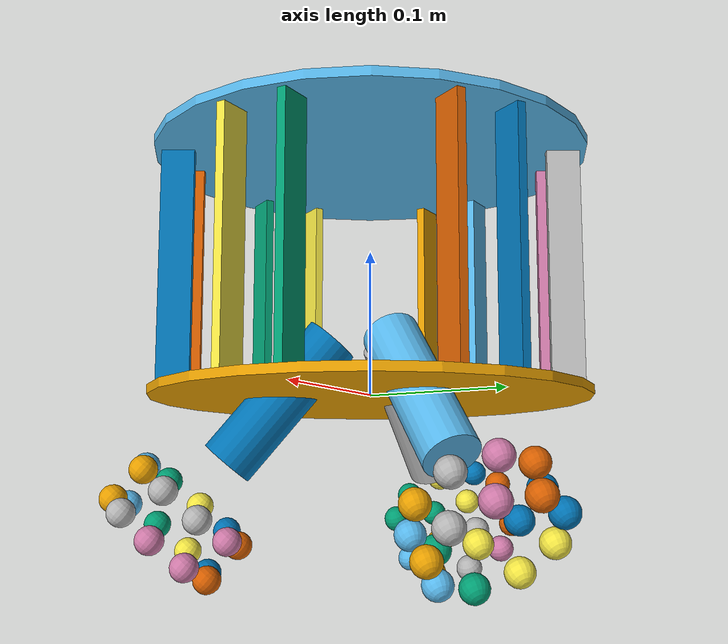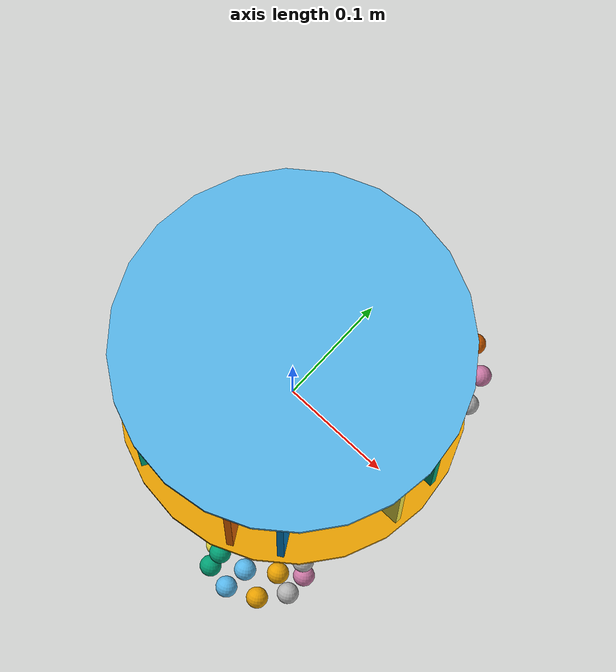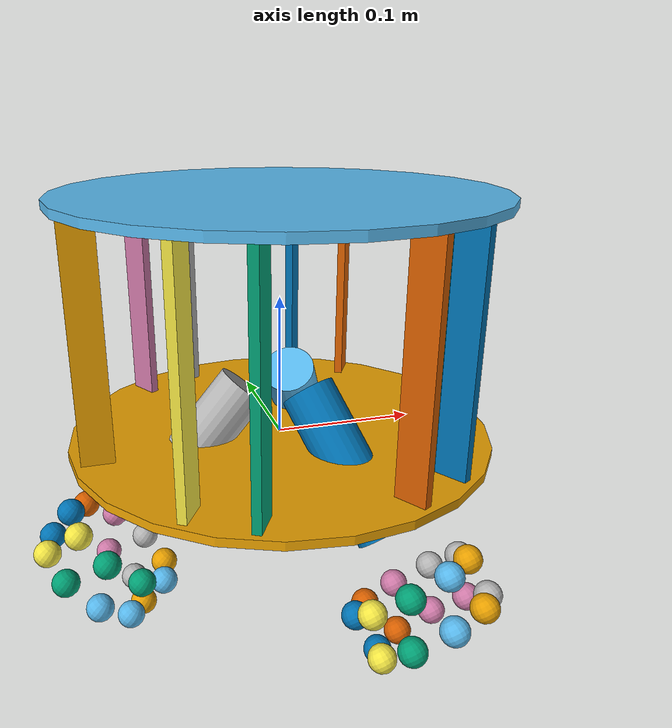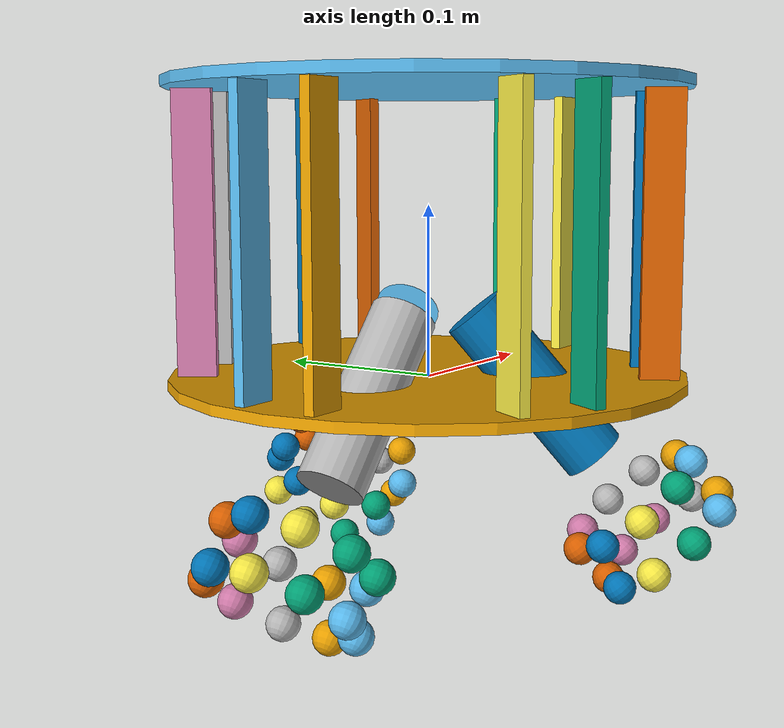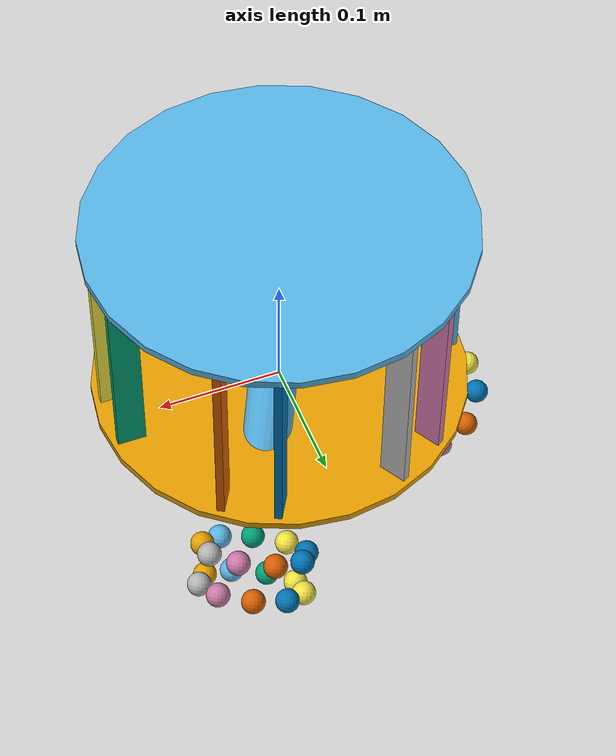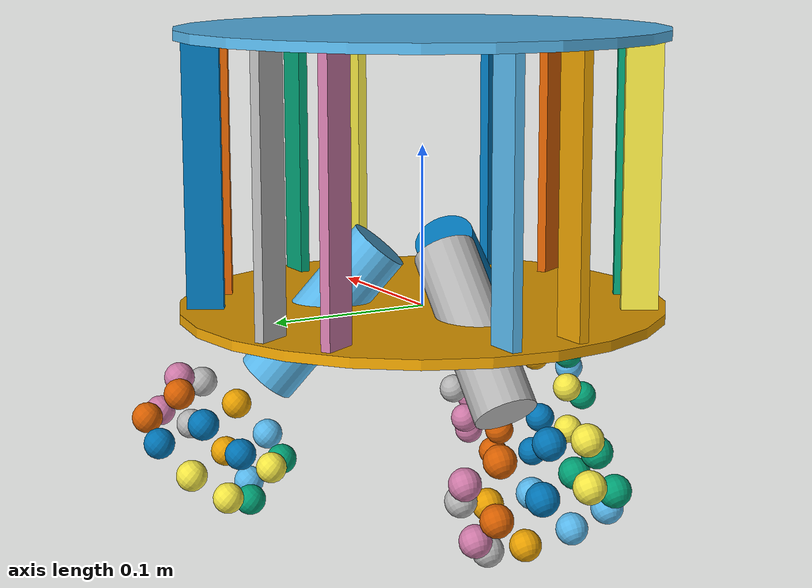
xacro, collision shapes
<?xml version="1.0"?>
<robot name="mooncake"
	xmlns:xacro="http://ros.org/wiki/xacro">
	<!--Rotate entire robot-->
    <xacro:property name="robot_angle" value="${0}"/>
	<xacro:macro name="inertial_box" params="size rho:=1000 xyz:='0 0 0' rpy:='0 0 0'">
		<xacro:property name="w" value="${size.split()[0]}"/>
		<xacro:property name="d" value="${size.split()[1]}"/>
		<xacro:property name="h" value="${size.split()[2]}"/>
		<xacro:property name="mass" value="${rho*w*d*h}"/>
		<inertial>
			<origin xyz="${xyz}" rpy="${rpy}"/>
			<mass value="${mass}"/>
			<inertia ixx="${(mass/12)*(h**2 + d**2)}" iyy="${(mass/12)*(w**2 + h**2)}" izz="${(mass/12)*(w**2 + d**2)}" ixy="0" ixz="0" iyz="0"/>
		</inertial>
	</xacro:macro>
	<xacro:macro name="inertial_cylinder" params="length radius rho:=1000 xyz:='0 0 0' rpy:='0 0 0'">
		<xacro:property name="mass" value="${rho*pi*length*radius**2}"/>
		<inertial>
			<origin xyz="${xyz}" rpy="${rpy}"/>
			<mass value="${mass}"/>
			<inertia ixx="${(mass/12)*(3*radius**2 + length**2)}" iyy="${(mass/12)*(3*radius**2 + length**2)}" izz="${(mass/2)*radius**2}" ixy="0" ixz="0" iyz="0"/>
		</inertial>
	</xacro:macro>
	<xacro:macro name="inertial_sphere" params="radius rho:=1000 xyz:='0 0 0' rpy:='0 0 0'">
		<xacro:property name="mass" value="${4/3*rho*pi*radius**3}"/>
		<inertial>
			<origin xyz="${xyz}" rpy="${rpy}"/>
			<mass value="${mass}"/>
			<inertia ixx="${(2/5*mass)*(radius**2)}" iyy="${(2/5*mass)*(radius**2)}" izz="${(2/5*mass)*(radius**2)}" ixy="0" ixz="0" iyz="0"/>
		</inertial>
	</xacro:macro>
	<xacro:macro name="collision_cylinder" params="length radius xyz:='0 0 0' rpy:='0 0 0'">
		<collision>
			<origin xyz="${xyz}" rpy="${rpy}"/>
			<geometry>
				<cylinder length="${length}" radius="${radius}"/>
			</geometry>
		</collision>
	</xacro:macro>
	<xacro:macro name="collision_capsule" params="length radius xyz:='0 0 0' rpy:='0 0 0'">
		<collision>
			<origin xyz="${xyz}" rpy="${rpy}"/>
			<geometry>
				<capsule length="${length}" radius="${radius}"/>
			</geometry>
		</collision>
	</xacro:macro>
	<xacro:macro name="collision_box" params="size xyz:='0 0 0' rpy:='0 0 0'">
		<collision>
			<origin xyz="${xyz}" rpy="${rpy}"/>
			<geometry>
				<box size="${size}"/>
			</geometry>
		</collision>
	</xacro:macro>
	<xacro:macro name="collision_sphere" params="radius xyz:='0 0 0' rpy:='0 0 0'">
		<collision>
			<origin xyz="${xyz}" rpy="${rpy}"/>
			<geometry>
				<sphere radius="${radius}"/>
			</geometry>
		</collision>
	</xacro:macro>

	<xacro:macro name="pillar" params="xyz rpy num">
		<link name="pillar_${num}">
			<visual>
				<geometry>
					<mesh filename="package://meshes/pillar.dae" scale="1 1 1"/>
				</geometry>
			</visual>
			<xacro:collision_box size="0.0225 0.006 0.174"/>
			<xacro:inertial_box size="0.0225 0.006 0.174" rho="1212"/>
		</link>
		<joint name="pillar_${num}_joint" type="fixed">
			<origin xyz="${xyz}" rpy="${rpy}"/>
			<parent link="base_plate"/>
			<child link="pillar_${num}"/>
		</joint>
	</xacro:macro>

    <xacro:macro name="pillars" params="num">
		<!--Angle from center-->
		<xacro:property name="angle" value="${num*(pi/3) + robot_angle}"/>
		<!--Radius from center-->
		<xacro:property name="r" value="0.13125"/>
		<!--Z offset-->
		<xacro:property name="z" value="0.08425"/>
		<!--Left/Right offset-->
		<xacro:property name="d" value="0.022"/>
		<!--X offset-->
		<xacro:property name="x" value="${cos(angle)*r}"/>
		<!--Y offset-->
		<xacro:property name="y" value="${sin(angle)*r}"/>
		<!--Left pillar-->
		<xacro:pillar xyz="${x+cos(angle+pi/2)*d} ${y+sin(angle+pi/2)*d} ${z}" rpy="0 0 ${angle}" num="${2*num}"/>
		<!--Right pillar-->
		<xacro:pillar xyz="${x+cos(angle-pi/2)*d} ${y+sin(angle-pi/2)*d} ${z}" rpy="0 0 ${angle}" num="${2*num+1}"/>
	</xacro:macro>

	<xacro:macro name="roller" params="wheel_num num side">
		<!-- Number of roller per plate -->
		<xacro:property name="n_roller" value="9"/>
		<!-- Radius of the sphere used for the roller -->
		<xacro:property name="roller_radius" value="0.0095"/>
		<!-- Distance from center of wheel to the roller rotation axis -->
		<xacro:property name="roller_axis_offset" value="0.042"/>
		<!-- Distance from center of wheel to the each side of plate -->
		<xacro:property name="plate_offset" value="0.01438"/>
		<!-- Angle of each roller -->
		<xacro:property name="angle" value="${2*pi/n_roller*(num+(side*0.5))}"/>

		<link name="roller_${wheel_num}_${side}_${num}">
			<xacro:collision_sphere xyz="0 0 0" radius="${roller_radius}"/>
			<xacro:inertial_sphere rho="1000" rpy="0 0 0" radius="${roller_radius}"/>
		</link>
		<joint name="roller_${wheel_num}_${side}_${num}_joint" type="continuous">
			<origin xyz="${sin(angle)*roller_axis_offset} ${cos(angle)*roller_axis_offset} ${(side-0.5)*2*plate_offset}" rpy="0 0 ${-angle}"/>
			<axis xyz="1 0 0"/>
			<parent link="wheel_${wheel_num}"/>
			<child link="roller_${wheel_num}_${side}_${num}"/>
		</joint>
	</xacro:macro>
	<xacro:macro name="omni_wheel" params="num">
		<!--Z-offset-->
		<xacro:property name="z" value="-0.10666"/>
		<!--Number of roller per plate -->
		<xacro:property name="n_roller" value="9"/>
		<link name="wheel_${num}">
			<visual>
				<geometry>
					<mesh filename="package://meshes/omni_wheel.dae" scale="1 1 1"/>
				</geometry>
			</visual>
			<xacro:inertial_cylinder rho="1334.33" length="0.02876" radius="0.05"/>
		</link>
		<joint name="wheel_${num}_joint" type="continuous">
			<origin xyz="0 0 ${z}" rpy="0 0 0"/>
			<axis xyz="0 0 -1"/>
			<parent link="motor_${num}"/>
			<child link="wheel_${num}"/>
		</joint>
		<xacro:roller wheel_num="${num}" num="0" side="0"/>
		<xacro:roller wheel_num="${num}" num="1" side="0"/>
		<xacro:roller wheel_num="${num}" num="2" side="0"/>
		<xacro:roller wheel_num="${num}" num="3" side="0"/>
		<xacro:roller wheel_num="${num}" num="4" side="0"/>
		<xacro:roller wheel_num="${num}" num="5" side="0"/>
		<xacro:roller wheel_num="${num}" num="6" side="0"/>
		<xacro:roller wheel_num="${num}" num="7" side="0"/>
		<xacro:roller wheel_num="${num}" num="8" side="0"/>
		<xacro:roller wheel_num="${num}" num="0" side="1"/>
		<xacro:roller wheel_num="${num}" num="1" side="1"/>
		<xacro:roller wheel_num="${num}" num="2" side="1"/>
		<xacro:roller wheel_num="${num}" num="3" side="1"/>
		<xacro:roller wheel_num="${num}" num="4" side="1"/>
		<xacro:roller wheel_num="${num}" num="5" side="1"/>
		<xacro:roller wheel_num="${num}" num="6" side="1"/>
		<xacro:roller wheel_num="${num}" num="7" side="1"/>
		<xacro:roller wheel_num="${num}" num="8" side="1"/>

	</xacro:macro>

	<xacro:macro name="motor_assembly" params="num angle">
		<!--Angle between base and motor (50 degree from floor)-->
		<xacro:property name="motor_angle" value="${4*pi/18}"/>
		<!--Extended radius from center (referenced to each motor mount)-->
		<xacro:property name="delta_r" value="${0.025-0.025*sin(motor_angle)-0.055*cos(motor_angle)}"/>
		<!--Z-offset referenced to motor mount-->
		<xacro:property name="delta_z" value="${-0.02-0.025*cos(motor_angle)+0.055*sin(motor_angle)}"/>
		<link name="motor_${num}">
			<visual>
				<geometry>
					<mesh filename="package://meshes/ZGX38REE.dae" scale="1 1 1"/>
				</geometry>
			</visual>
			<xacro:collision_cylinder length="0.110" radius="0.019"/>
			<xacro:inertial_cylinder rho="4925" length="0.110" radius="0.019"/>
		</link>
		<joint name="motor_${num}_joint" type="fixed">
			<origin xyz="${delta_r} 0 ${delta_z}" rpy="0 ${-motor_angle} 0"/>
			<parent link="motor_mount_${num}"/>
			<child link="motor_${num}"/>
		</joint>
		<xacro:omni_wheel num="${num}"/>
	</xacro:macro>

	<xacro:macro name="motor_mount_assembly" params="num">
		<!--Angle from center-->
		<xacro:property name="angle" value="${(num-3/2)*(2*pi/3) + robot_angle}"/>
		<!--Radius from center-->
		<xacro:property name="r" value="0.095"/>
		<link name="motor_mount_${num}">
			<visual>
				<geometry>
					<mesh filename="package://meshes/motor_mount.dae" scale="1 1 1"/>
				</geometry>
			</visual>
		</link>
		<joint name="motor_mount_${num}_joint" type="fixed">
			<origin xyz="${cos(angle)*r} ${sin(angle)*r} 0" rpy="0 0 ${angle}"/>
			<parent link="base_plate"/>
			<child link="motor_mount_${num}"/>
		</joint>
		<!--Motor-->
		<xacro:motor_assembly num="${num}" angle="${angle}"/>

	</xacro:macro>

	<!--Lower plate-->
	<link name="base_plate">
		<visual>
			<origin rpy="0 0 ${robot_angle}"/>
			<geometry>
				<mesh filename="package://meshes/lower_plate.dae" scale="1 1 1"/>
			</geometry>
		</visual>
		<xacro:collision_cylinder length="0.006" radius="0.15" xyz="0 0 0"/>
		<xacro:inertial_cylinder rho="1212" length="0.006" radius="0.15" xyz="0 0 0"/>

	</link>
	<!--Upper plate-->
	<link name="upper_plate">
		<visual>
			<geometry>
				<mesh filename="package://meshes/upper_plate.dae" scale="1 1 1"/>
			</geometry>
		</visual>
		<xacro:collision_cylinder length="0.006" radius="0.15" xyz="0 0 0"/>
		<xacro:inertial_cylinder rho="1212" length="0.006" radius="0.15" xyz="0 0 0"/>
	</link>
	<joint name="upper_plate_joint" type="fixed">
		<origin xyz="0 0 0.1685" rpy="0 0 ${robot_angle}"/>
		<parent link="base_plate"/>
		<child link="upper_plate"/>
	</joint>
	<!--Pillars-->
	<xacro:pillars num="0"/>
	<xacro:pillars num="1"/>
	<xacro:pillars num="2"/>
	<xacro:pillars num="3"/>
	<xacro:pillars num="4"/>
	<xacro:pillars num="5"/>
	<!--Motor Mount-->
	<xacro:motor_mount_assembly num="0"/>
	<xacro:motor_mount_assembly num="1"/>
	<xacro:motor_mount_assembly num="2"/>

</robot>
